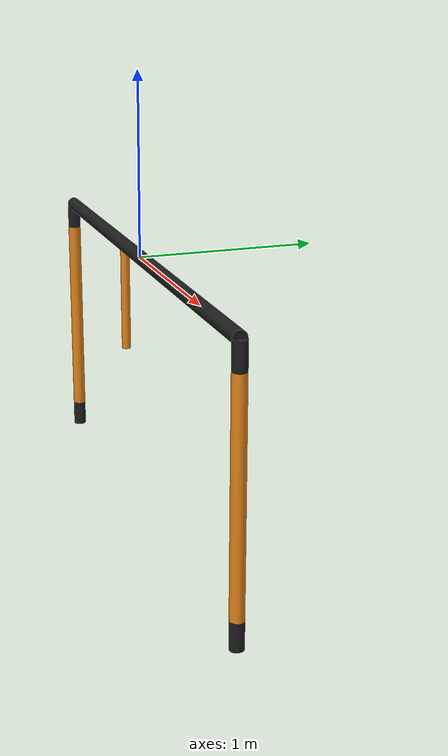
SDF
<?xml version='1.0'?>
<sdf version='1.6'>
  <model name='gate'>
    <link name='gate'>
      <self_collide>0</self_collide>
      <enable_wind>0</enable_wind>
      <kinematic>0</kinematic>
      <pose frame=''>0 0 0 0 -0 0</pose>
      <gravity>1</gravity>
      <inertial>
        <mass>1</mass>
        <pose frame=''>0 0 0 0 -0 0</pose>
        <inertia>
          <ixx>1</ixx>
          <ixy>0</ixy>
          <ixz>0</ixz>
          <iyy>1</iyy>
          <iyz>0</iyz>
          <izz>1</izz>
        </inertia>
      </inertial>
      <visual name='gate_top_vis'>
        <pose frame=''>0 0 0 0 1.5707 0</pose>
        <geometry>
          <cylinder>
            <radius>0.0381</radius>
            <length>3.048</length>
          </cylinder>
        </geometry>
        <material>
          <script>
            <uri>file://media/materials/scripts/gazebo.material</uri>
            <name>Gazebo/FlatBlack</name>
          </script>
          <shader type='vertex'>
            <normal_map>__default__</normal_map>
          </shader>
          <ambient>0.1 0.1 0.1 1</ambient>
          <diffuse>0.1 0.1 0.1 1</diffuse>
          <specular>0.01 0.01 0.01 1</specular>
          <emissive>0 0 0 1</emissive>
        </material>
        <transparency>0</transparency>
        <cast_shadows>1</cast_shadows>
      </visual>
      <visual name='gate_left_top_vis'>
        <pose frame=''>-1.524 0 -0.0762 0 -0 0</pose>
        <geometry>
          <cylinder>
            <radius>0.0381</radius>
            <length>0.1524</length>
          </cylinder>
        </geometry>
        <material>
          <script>
            <uri>file://media/materials/scripts/gazebo.material</uri>
            <name>Gazebo/FlatBlack</name>
          </script>
          <shader type='vertex'>
            <normal_map>__default__</normal_map>
          </shader>
          <ambient>0.1 0.1 0.1 1</ambient>
          <diffuse>0.1 0.1 0.1 1</diffuse>
          <specular>0.01 0.01 0.01 1</specular>
          <emissive>0 0 0 1</emissive>
        </material>
        <transparency>0</transparency>
        <cast_shadows>1</cast_shadows>
      </visual>
      <visual name='gate_left_mid_vis'>
        <pose frame=''>-1.524 0 -0.762 0 -0 0</pose>
        <geometry>
          <cylinder>
            <radius>0.0381</radius>
            <length>1.2192</length>
          </cylinder>
        </geometry>
        <material>
          <script>
            <uri>file://media/materials/scripts/gazebo.material</uri>
            <name>Gazebo/Orange</name>
          </script>
          <diffuse>0.6 0.309 0.047 1</diffuse>
          <shader type='vertex'>
            <normal_map>__default__</normal_map>
          </shader>
          <ambient>1 0.509 0.047 1</ambient>
          <specular>0.5 0.5 0.5 1</specular>
          <emissive>0 0 0 1</emissive>
        </material>
        <transparency>0</transparency>
        <cast_shadows>1</cast_shadows>
</visual>
       <visual name='gate_mid_vis'>
        <pose frame=''>-0.30487 0 -0.3048 0 -0 0</pose>
        <geometry>
          <cylinder>
            <radius>0.0254</radius>
            <length>0.6096</length>
          </cylinder>
        </geometry>
        <material>
          <script>
            <uri>file://media/materials/scripts/gazebo.material</uri>
            <name>Gazebo/Orange</name>
          </script>
          <diffuse>0.6 0.309 0.047 1</diffuse>
          <shader type='vertex'>
            <normal_map>__default__</normal_map>
          </shader>
          <ambient>1 0.509 0.047 1</ambient>
          <specular>0.5 0.5 0.5 1</specular>
          <emissive>0 0 0 1</emissive>
        </material>
        <transparency>0</transparency>
        <cast_shadows>1</cast_shadows>
      </visual>
      <visual name='gate_left_bottom_vis'>
        <pose frame=''>-1.524 0 -1.4478 0 -0 0</pose>
        <geometry>
          <cylinder>
            <radius>0.0381</radius>
            <length>0.1524</length>
          </cylinder>
        </geometry>
        <material>
          <script>
            <uri>file://media/materials/scripts/gazebo.material</uri>
            <name>Gazebo/FlatBlack</name>
          </script>
          <shader type='vertex'>
            <normal_map>__default__</normal_map>
          </shader>
          <ambient>0.1 0.1 0.1 1</ambient>
          <diffuse>0.1 0.1 0.1 1</diffuse>
          <specular>0.01 0.01 0.01 1</specular>
          <emissive>0 0 0 1</emissive>
        </material>
        <transparency>0</transparency>
        <cast_shadows>1</cast_shadows>
      </visual>
      <visual name='gate_right_top_vis'>
        <pose frame=''>1.524 0 -0.0762 0 -0 0</pose>
        <geometry>
          <cylinder>
            <radius>0.0381</radius>
            <length>0.1524</length>
          </cylinder>
        </geometry>
        <material>
          <script>
            <uri>file://media/materials/scripts/gazebo.material</uri>
            <name>Gazebo/FlatBlack</name>
          </script>
          <shader type='vertex'>
            <normal_map>__default__</normal_map>
          </shader>
          <ambient>0.1 0.1 0.1 1</ambient>
          <diffuse>0.1 0.1 0.1 1</diffuse>
          <specular>0.01 0.01 0.01 1</specular>
          <emissive>0 0 0 1</emissive>
        </material>
        <transparency>0</transparency>
        <cast_shadows>1</cast_shadows>
      </visual>
      <visual name='gate_right_mid_vis'>
        <pose frame=''>1.524 0 -0.762 0 -0 0</pose>
        <geometry>
          <cylinder>
            <radius>0.0381</radius>
            <length>1.2192</length>
          </cylinder>
        </geometry>
        <material>
          <script>
            <uri>file://media/materials/scripts/gazebo.material</uri>
            <name>Gazebo/Orange</name>
          </script>
          <diffuse>0.6 0.309 0.047 1</diffuse>
          <shader type='vertex'>
            <normal_map>__default__</normal_map>
          </shader>
          <ambient>1 0.509 0.047 1</ambient>
          <specular>0.5 0.5 0.5 1</specular>
          <emissive>0 0 0 1</emissive>
        </material>
        <transparency>0</transparency>
        <cast_shadows>1</cast_shadows>
      </visual>
      <visual name='gate_right_bottom_vis'>
        <pose frame=''>1.524 0 -1.4478 0 -0 0</pose>
        <geometry>
          <cylinder>
            <radius>0.0381</radius>
            <length>0.1524</length>
          </cylinder>
        </geometry>
        <material>
          <script>
            <uri>file://media/materials/scripts/gazebo.material</uri>
            <name>Gazebo/FlatBlack</name>
          </script>
          <shader type='vertex'>
            <normal_map>__default__</normal_map>
          </shader>
          <ambient>0.1 0.1 0.1 1</ambient>
          <diffuse>0.1 0.1 0.1 1</diffuse>
          <specular>0.01 0.01 0.01 1</specular>
          <emissive>0 0 0 1</emissive>
        </material>
        <transparency>0</transparency>
        <cast_shadows>1</cast_shadows>
      </visual>
      <collision name='gate_top_collide'>
        <laser_retro>0</laser_retro>
        <max_contacts>10</max_contacts>
        <pose frame=''>0 0 0 0 1.5707 0</pose>
        <geometry>
          <cylinder>
            <radius>0.0381</radius>
            <length>3.048</length>
          </cylinder>
        </geometry>
        <surface>
          <friction>
            <ode>
              <mu>1</mu>
              <mu2>1</mu2>
              <fdir1>0 0 0</fdir1>
              <slip1>0</slip1>
              <slip2>0</slip2>
            </ode>
            <torsional>
              <coefficient>1</coefficient>
              <patch_radius>0</patch_radius>
              <surface_radius>0</surface_radius>
              <use_patch_radius>1</use_patch_radius>
              <ode>
                <slip>0</slip>
              </ode>
            </torsional>
          </friction>
          <bounce>
            <restitution_coefficient>0</restitution_coefficient>
            <threshold>1e+06</threshold>
          </bounce>
          <contact>
            <collide_without_contact>0</collide_without_contact>
            <collide_without_contact_bitmask>1</collide_without_contact_bitmask>
            <collide_bitmask>1</collide_bitmask>
            <ode>
              <soft_cfm>0</soft_cfm>
              <soft_erp>0.2</soft_erp>
              <kp>1e+13</kp>
              <kd>1</kd>
              <max_vel>0.01</max_vel>
              <min_depth>0</min_depth>
            </ode>
            <bullet>
              <split_impulse>1</split_impulse>
              <split_impulse_penetration_threshold>-0.01</split_impulse_penetration_threshold>
              <soft_cfm>0</soft_cfm>
              <soft_erp>0.2</soft_erp>
              <kp>1e+13</kp>
              <kd>1</kd>
            </bullet>
          </contact>
        </surface>
      </collision>
      <collision name='gate_left_collide'>
        <laser_retro>0</laser_retro>
        <max_contacts>10</max_contacts>
        <pose frame=''>-1.524 0 -0.762 0 -0 0</pose>
        <geometry>
          <cylinder>
            <radius>0.0381</radius>
            <length>1.524</length>
          </cylinder>
        </geometry>
        <surface>
          <friction>
            <ode>
              <mu>1</mu>
              <mu2>1</mu2>
              <fdir1>0 0 0</fdir1>
              <slip1>0</slip1>
              <slip2>0</slip2>
            </ode>
            <torsional>
              <coefficient>1</coefficient>
              <patch_radius>0</patch_radius>
              <surface_radius>0</surface_radius>
              <use_patch_radius>1</use_patch_radius>
              <ode>
                <slip>0</slip>
              </ode>
            </torsional>
          </friction>
          <bounce>
            <restitution_coefficient>0</restitution_coefficient>
            <threshold>1e+06</threshold>
          </bounce>
          <contact>
            <collide_without_contact>0</collide_without_contact>
            <collide_without_contact_bitmask>1</collide_without_contact_bitmask>
            <collide_bitmask>1</collide_bitmask>
            <ode>
              <soft_cfm>0</soft_cfm>
              <soft_erp>0.2</soft_erp>
              <kp>1e+13</kp>
              <kd>1</kd>
              <max_vel>0.01</max_vel>
              <min_depth>0</min_depth>
            </ode>
            <bullet>
              <split_impulse>1</split_impulse>
              <split_impulse_penetration_threshold>-0.01</split_impulse_penetration_threshold>
              <soft_cfm>0</soft_cfm>
              <soft_erp>0.2</soft_erp>
              <kp>1e+13</kp>
              <kd>1</kd>
            </bullet>
          </contact>
        </surface>
      </collision>
      <collision name='gate_right_collide'>
        <laser_retro>0</laser_retro>
        <max_contacts>10</max_contacts>
        <pose frame=''>1.524 0 -0.762 0 -0 0</pose>
        <geometry>
          <cylinder>
            <radius>0.0381</radius>
            <length>1.524</length>
          </cylinder>
        </geometry>
        <surface>
          <friction>
            <ode>
              <mu>1</mu>
              <mu2>1</mu2>
              <fdir1>0 0 0</fdir1>
              <slip1>0</slip1>
              <slip2>0</slip2>
            </ode>
            <torsional>
              <coefficient>1</coefficient>
              <patch_radius>0</patch_radius>
              <surface_radius>0</surface_radius>
              <use_patch_radius>1</use_patch_radius>
              <ode>
                <slip>0</slip>
              </ode>
            </torsional>
          </friction>
          <bounce>
            <restitution_coefficient>0</restitution_coefficient>
            <threshold>1e+06</threshold>
          </bounce>
          <contact>
            <collide_without_contact>0</collide_without_contact>
            <collide_without_contact_bitmask>1</collide_without_contact_bitmask>
            <collide_bitmask>1</collide_bitmask>
            <ode>
              <soft_cfm>0</soft_cfm>
              <soft_erp>0.2</soft_erp>
              <kp>1e+13</kp>
              <kd>1</kd>
              <max_vel>0.01</max_vel>
              <min_depth>0</min_depth>
            </ode>
            <bullet>
              <split_impulse>1</split_impulse>
              <split_impulse_penetration_threshold>-0.01</split_impulse_penetration_threshold>
              <soft_cfm>0</soft_cfm>
              <soft_erp>0.2</soft_erp>
              <kp>1e+13</kp>
              <kd>1</kd>
            </bullet>
          </contact>
        </surface>
      </collision>
    </link>
    <static>1</static>
    <allow_auto_disable>1</allow_auto_disable>
  </model>
</sdf>
